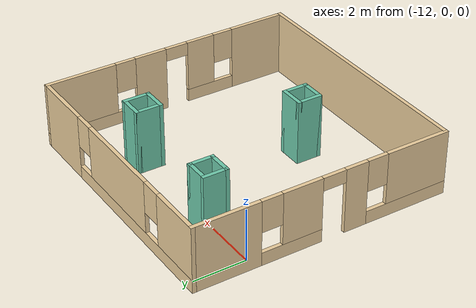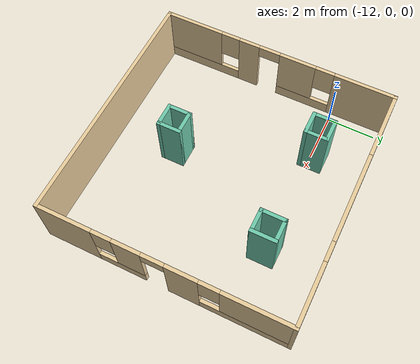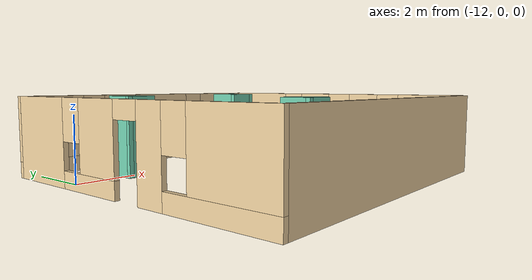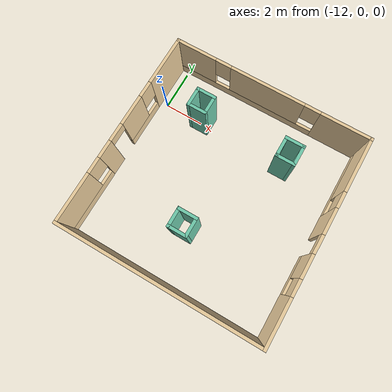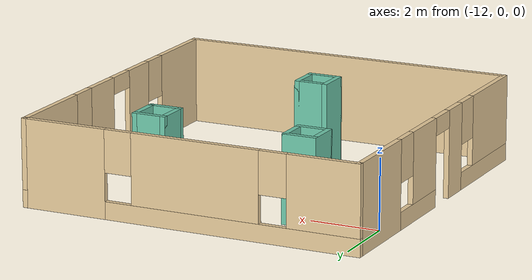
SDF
<?xml version='1.0'?>
<sdf version='1.7'>
  <model name='building_with_pillars'>
    <pose>-6.24379 -2.6968 0 0 -0 0</pose>
    <link name='Wall_0'>
      <pose>-6.16879 -0 0 0 -0 -1.5708</pose>
      <visual name='Wall_0_Visual_0'>
        <pose>-3.71684 0 1.25 0 -0 0</pose>
        <geometry>
          <box>
            <size>2.56633 0.15 2.5</size>
          </box>
        </geometry>
        <material>
          <script>
            <uri>file://media/materials/scripts/gazebo.material</uri>
            <name>Gazebo/Grey</name>
          </script>
          <ambient>0.921569 0.807843 0.615686 1</ambient>
        </material>
        <meta>
          <layer>0</layer>
        </meta>
      </visual>
      <collision name='Wall_0_Collision_0'>
        <geometry>
          <box>
            <size>2.56633 0.15 2.5</size>
          </box>
        </geometry>
        <pose>-3.71684 0 1.25 0 -0 0</pose>
      </collision>
      <visual name='Wall_0_Visual_1'>
        <pose>1.24118 0 1.25 0 -0 0</pose>
        <geometry>
          <box>
            <size>0.884796 0.15 2.5</size>
          </box>
        </geometry>
        <material>
          <script>
            <uri>file://media/materials/scripts/gazebo.material</uri>
            <name>Gazebo/Grey</name>
          </script>
          <ambient>0.921569 0.807843 0.615686 1</ambient>
        </material>
        <meta>
          <layer>0</layer>
        </meta>
      </visual>
      <collision name='Wall_0_Collision_1'>
        <geometry>
          <box>
            <size>0.884796 0.15 2.5</size>
          </box>
        </geometry>
        <pose>1.24118 0 1.25 0 -0 0</pose>
      </collision>
      <visual name='Wall_0_Visual_2'>
        <pose>-1.26745 0 0.25 0 -0 0</pose>
        <geometry>
          <box>
            <size>2.33245 0.15 0.5</size>
          </box>
        </geometry>
        <material>
          <script>
            <uri>file://media/materials/scripts/gazebo.material</uri>
            <name>Gazebo/Grey</name>
          </script>
          <ambient>0.921569 0.807843 0.615686 1</ambient>
        </material>
        <meta>
          <layer>0</layer>
        </meta>
      </visual>
      <collision name='Wall_0_Collision_2'>
        <geometry>
          <box>
            <size>2.33245 0.15 0.5</size>
          </box>
        </geometry>
        <pose>-1.26745 0 0.25 0 -0 0</pose>
      </collision>
      <visual name='Wall_0_Visual_3'>
        <pose>3.34179 0 0.25 0 -0 0</pose>
        <geometry>
          <box>
            <size>3.31643 0.15 0.5</size>
          </box>
        </geometry>
        <material>
          <script>
            <uri>file://media/materials/scripts/gazebo.material</uri>
            <name>Gazebo/Grey</name>
          </script>
          <ambient>0.921569 0.807843 0.615686 1</ambient>
        </material>
        <meta>
          <layer>0</layer>
        </meta>
      </visual>
      <collision name='Wall_0_Collision_3'>
        <geometry>
          <box>
            <size>3.31643 0.15 0.5</size>
          </box>
        </geometry>
        <pose>3.34179 0 0.25 0 -0 0</pose>
      </collision>
      <visual name='Wall_0_Visual_4'>
        <pose>-0.867448 0 1.5 0 -0 0</pose>
        <geometry>
          <box>
            <size>1.53245 0.15 2</size>
          </box>
        </geometry>
        <material>
          <script>
            <uri>file://media/materials/scripts/gazebo.material</uri>
            <name>Gazebo/Grey</name>
          </script>
          <ambient>0.921569 0.807843 0.615686 1</ambient>
        </material>
        <meta>
          <layer>0</layer>
        </meta>
      </visual>
      <collision name='Wall_0_Collision_4'>
        <geometry>
          <box>
            <size>1.53245 0.15 2</size>
          </box>
        </geometry>
        <pose>-0.867448 0 1.5 0 -0 0</pose>
      </collision>
      <visual name='Wall_0_Visual_5'>
        <pose>-0.867448 0 1.5 0 -0 0</pose>
        <geometry>
          <box>
            <size>1.53245 0.15 2</size>
          </box>
        </geometry>
        <material>
          <script>
            <uri>file://media/materials/scripts/gazebo.material</uri>
            <name>Gazebo/Grey</name>
          </script>
          <ambient>0.921569 0.807843 0.615686 1</ambient>
        </material>
        <meta>
          <layer>0</layer>
        </meta>
      </visual>
      <collision name='Wall_0_Collision_5'>
        <geometry>
          <box>
            <size>1.53245 0.15 2</size>
          </box>
        </geometry>
        <pose>-0.867448 0 1.5 0 -0 0</pose>
      </collision>
      <visual name='Wall_0_Visual_6'>
        <pose>3.74179 0 1.5 0 -0 0</pose>
        <geometry>
          <box>
            <size>2.51643 0.15 2</size>
          </box>
        </geometry>
        <material>
          <script>
            <uri>file://media/materials/scripts/gazebo.material</uri>
            <name>Gazebo/Grey</name>
          </script>
          <ambient>0.921569 0.807843 0.615686 1</ambient>
        </material>
        <meta>
          <layer>0</layer>
        </meta>
      </visual>
      <collision name='Wall_0_Collision_6'>
        <geometry>
          <box>
            <size>2.51643 0.15 2</size>
          </box>
        </geometry>
        <pose>3.74179 0 1.5 0 -0 0</pose>
      </collision>
      <visual name='Wall_0_Visual_7'>
        <pose>-2.03367 0 1.9 0 -0 0</pose>
        <geometry>
          <box>
            <size>0.8 0.15 1.2</size>
          </box>
        </geometry>
        <material>
          <script>
            <uri>file://media/materials/scripts/gazebo.material</uri>
            <name>Gazebo/Grey</name>
          </script>
          <ambient>0.921569 0.807843 0.615686 1</ambient>
        </material>
        <meta>
          <layer>0</layer>
        </meta>
      </visual>
      <collision name='Wall_0_Collision_7'>
        <geometry>
          <box>
            <size>0.8 0.15 1.2</size>
          </box>
        </geometry>
        <pose>-2.03367 0 1.9 0 -0 0</pose>
      </collision>
      <visual name='Wall_0_Visual_8'>
        <pose>2.08357 0 1.9 0 -0 0</pose>
        <geometry>
          <box>
            <size>0.8 0.15 1.2</size>
          </box>
        </geometry>
        <material>
          <script>
            <uri>file://media/materials/scripts/gazebo.material</uri>
            <name>Gazebo/Grey</name>
          </script>
          <ambient>0.921569 0.807843 0.615686 1</ambient>
        </material>
        <meta>
          <layer>0</layer>
        </meta>
      </visual>
      <collision name='Wall_0_Collision_8'>
        <geometry>
          <box>
            <size>0.8 0.15 1.2</size>
          </box>
        </geometry>
        <pose>2.08357 0 1.9 0 -0 0</pose>
      </collision>
      <visual name='Wall_0_Visual_9'>
        <pose>0.348778 0 2.25 0 -0 0</pose>
        <geometry>
          <box>
            <size>0.9 0.15 0.5</size>
          </box>
        </geometry>
        <material>
          <script>
            <uri>file://media/materials/scripts/gazebo.material</uri>
            <name>Gazebo/Grey</name>
          </script>
          <ambient>0.921569 0.807843 0.615686 1</ambient>
        </material>
        <meta>
          <layer>0</layer>
        </meta>
      </visual>
      <collision name='Wall_0_Collision_9'>
        <geometry>
          <box>
            <size>0.9 0.15 0.5</size>
          </box>
        </geometry>
        <pose>0.348778 0 2.25 0 -0 0</pose>
      </collision>
      <visual name='Wall_0_Visual_10'>
        <pose>0.348778 0 2.25 0 -0 0</pose>
        <geometry>
          <box>
            <size>0.9 0.15 0.5</size>
          </box>
        </geometry>
        <material>
          <script>
            <uri>file://media/materials/scripts/gazebo.material</uri>
            <name>Gazebo/Grey</name>
          </script>
          <ambient>0.921569 0.807843 0.615686 1</ambient>
        </material>
        <meta>
          <layer>0</layer>
        </meta>
      </visual>
      <collision name='Wall_0_Collision_10'>
        <geometry>
          <box>
            <size>0.9 0.15 0.5</size>
          </box>
        </geometry>
        <pose>0.348778 0 2.25 0 -0 0</pose>
      </collision>
    </link>
    <link name='Wall_1'>
      <collision name='Wall_1_Collision'>
        <geometry>
          <box>
            <size>10 0.15 2.5</size>
          </box>
        </geometry>
        <pose>0 0 1.25 0 -0 0</pose>
      </collision>
      <visual name='Wall_1_Visual'>
        <pose>0 0 1.25 0 -0 0</pose>
        <geometry>
          <box>
            <size>10 0.15 2.5</size>
          </box>
        </geometry>
        <material>
          <script>
            <uri>file://media/materials/scripts/gazebo.material</uri>
            <name>Gazebo/Grey</name>
          </script>
          <ambient>0.921569 0.807843 0.615686 1</ambient>
        </material>
        <meta>
          <layer>0</layer>
        </meta>
      </visual>
      <pose>-1.24378 -4.925 0 0 -0 0</pose>
    </link>
    <link name='Wall_11'>
      <collision name='Wall_11_Collision'>
        <geometry>
          <box>
            <size>1 0.15 2.5</size>
          </box>
        </geometry>
        <pose>0 0 1.25 0 -0 0</pose>
      </collision>
      <visual name='Wall_11_Visual'>
        <pose>0 0 1.25 0 -0 0</pose>
        <geometry>
          <box>
            <size>1 0.15 2.5</size>
          </box>
        </geometry>
        <material>
          <script>
            <uri>file://media/materials/scripts/gazebo.material</uri>
            <name>Gazebo/Grey</name>
          </script>
          <ambient>0.435294 0.796078 0.67451 1</ambient>
        </material>
        <meta>
          <layer>0</layer>
        </meta>
      </visual>
      <pose>-3.68479 3.24047 0 0 -0 0</pose>
    </link>
    <link name='Wall_12'>
      <collision name='Wall_12_Collision'>
        <geometry>
          <box>
            <size>1 0.15 2.5</size>
          </box>
        </geometry>
        <pose>0 0 1.25 0 -0 0</pose>
      </collision>
      <visual name='Wall_12_Visual'>
        <pose>0 0 1.25 0 -0 0</pose>
        <geometry>
          <box>
            <size>1 0.15 2.5</size>
          </box>
        </geometry>
        <material>
          <script>
            <uri>file://media/materials/scripts/gazebo.material</uri>
            <name>Gazebo/Grey</name>
          </script>
          <ambient>0.435294 0.796078 0.67451 1</ambient>
        </material>
        <meta>
          <layer>0</layer>
        </meta>
      </visual>
      <pose>-3.25979 2.81547 0 0 -0 -1.5708</pose>
    </link>
    <link name='Wall_13'>
      <collision name='Wall_13_Collision'>
        <geometry>
          <box>
            <size>1 0.15 2.5</size>
          </box>
        </geometry>
        <pose>0 0 1.25 0 -0 0</pose>
      </collision>
      <visual name='Wall_13_Visual'>
        <pose>0 0 1.25 0 -0 0</pose>
        <geometry>
          <box>
            <size>1 0.15 2.5</size>
          </box>
        </geometry>
        <material>
          <script>
            <uri>file://media/materials/scripts/gazebo.material</uri>
            <name>Gazebo/Grey</name>
          </script>
          <ambient>0.435294 0.796078 0.67451 1</ambient>
        </material>
        <meta>
          <layer>0</layer>
        </meta>
      </visual>
      <pose>-3.68479 2.39047 0 0 -0 3.14159</pose>
    </link>
    <link name='Wall_14'>
      <collision name='Wall_14_Collision'>
        <geometry>
          <box>
            <size>1 0.15 2.5</size>
          </box>
        </geometry>
        <pose>0 0 1.25 0 -0 0</pose>
      </collision>
      <visual name='Wall_14_Visual'>
        <pose>0 0 1.25 0 -0 0</pose>
        <geometry>
          <box>
            <size>1 0.15 2.5</size>
          </box>
        </geometry>
        <material>
          <script>
            <uri>file://media/materials/scripts/gazebo.material</uri>
            <name>Gazebo/Grey</name>
          </script>
          <ambient>0.435294 0.796078 0.67451 1</ambient>
        </material>
        <meta>
          <layer>0</layer>
        </meta>
      </visual>
      <pose>-4.10979 2.81547 0 0 -0 1.5708</pose>
    </link>
    <link name='Wall_16'>
      <collision name='Wall_16_Collision'>
        <geometry>
          <box>
            <size>1 0.15 2.5</size>
          </box>
        </geometry>
        <pose>0 0 1.25 0 -0 0</pose>
      </collision>
      <visual name='Wall_16_Visual'>
        <pose>0 0 1.25 0 -0 0</pose>
        <geometry>
          <box>
            <size>1 0.15 2.5</size>
          </box>
        </geometry>
        <material>
          <script>
            <uri>file://media/materials/scripts/gazebo.material</uri>
            <name>Gazebo/Grey</name>
          </script>
          <ambient>0.435294 0.796078 0.67451 1</ambient>
        </material>
        <meta>
          <layer>0</layer>
        </meta>
      </visual>
      <pose>-1.60652 -1.86388 0 0 -0 0</pose>
    </link>
    <link name='Wall_17'>
      <collision name='Wall_17_Collision'>
        <geometry>
          <box>
            <size>1 0.15 2.5</size>
          </box>
        </geometry>
        <pose>0 0 1.25 0 -0 0</pose>
      </collision>
      <visual name='Wall_17_Visual'>
        <pose>0 0 1.25 0 -0 0</pose>
        <geometry>
          <box>
            <size>1 0.15 2.5</size>
          </box>
        </geometry>
        <material>
          <script>
            <uri>file://media/materials/scripts/gazebo.material</uri>
            <name>Gazebo/Grey</name>
          </script>
          <ambient>0.435294 0.796078 0.67451 1</ambient>
        </material>
        <meta>
          <layer>0</layer>
        </meta>
      </visual>
      <pose>-1.18152 -2.28888 0 0 -0 -1.5708</pose>
    </link>
    <link name='Wall_18'>
      <collision name='Wall_18_Collision'>
        <geometry>
          <box>
            <size>1 0.15 2.5</size>
          </box>
        </geometry>
        <pose>0 0 1.25 0 -0 0</pose>
      </collision>
      <visual name='Wall_18_Visual'>
        <pose>0 0 1.25 0 -0 0</pose>
        <geometry>
          <box>
            <size>1 0.15 2.5</size>
          </box>
        </geometry>
        <material>
          <script>
            <uri>file://media/materials/scripts/gazebo.material</uri>
            <name>Gazebo/Grey</name>
          </script>
          <ambient>0.435294 0.796078 0.67451 1</ambient>
        </material>
        <meta>
          <layer>0</layer>
        </meta>
      </visual>
      <pose>-1.60652 -2.71388 0 0 -0 3.14159</pose>
    </link>
    <link name='Wall_19'>
      <collision name='Wall_19_Collision'>
        <geometry>
          <box>
            <size>1 0.15 2.5</size>
          </box>
        </geometry>
        <pose>0 0 1.25 0 -0 0</pose>
      </collision>
      <visual name='Wall_19_Visual'>
        <pose>0 0 1.25 0 -0 0</pose>
        <geometry>
          <box>
            <size>1 0.15 2.5</size>
          </box>
        </geometry>
        <material>
          <script>
            <uri>file://media/materials/scripts/gazebo.material</uri>
            <name>Gazebo/Grey</name>
          </script>
          <ambient>0.435294 0.796078 0.67451 1</ambient>
        </material>
        <meta>
          <layer>0</layer>
        </meta>
      </visual>
      <pose>-2.03152 -2.28888 0 0 -0 1.5708</pose>
    </link>
    <link name='Wall_2'>
      <pose>3.68121 -0 0 0 -0 1.5708</pose>
      <visual name='Wall_2_Visual_0'>
        <pose>-3.84587 0 1.25 0 -0 0</pose>
        <geometry>
          <box>
            <size>2.30825 0.15 2.5</size>
          </box>
        </geometry>
        <material>
          <script>
            <uri>file://media/materials/scripts/gazebo.material</uri>
            <name>Gazebo/Grey</name>
          </script>
          <ambient>0.921569 0.807843 0.615686 1</ambient>
        </material>
        <meta>
          <layer>0</layer>
        </meta>
      </visual>
      <collision name='Wall_2_Collision_0'>
        <geometry>
          <box>
            <size>2.30825 0.15 2.5</size>
          </box>
        </geometry>
        <pose>-3.84587 0 1.25 0 -0 0</pose>
      </collision>
      <visual name='Wall_2_Visual_1'>
        <pose>0.786491 0 1.25 0 -0 0</pose>
        <geometry>
          <box>
            <size>1.27802 0.15 2.5</size>
          </box>
        </geometry>
        <material>
          <script>
            <uri>file://media/materials/scripts/gazebo.material</uri>
            <name>Gazebo/Grey</name>
          </script>
          <ambient>0.921569 0.807843 0.615686 1</ambient>
        </material>
        <meta>
          <layer>0</layer>
        </meta>
      </visual>
      <collision name='Wall_2_Collision_1'>
        <geometry>
          <box>
            <size>1.27802 0.15 2.5</size>
          </box>
        </geometry>
        <pose>0.786491 0 1.25 0 -0 0</pose>
      </collision>
      <visual name='Wall_2_Visual_2'>
        <pose>-1.72213 0 0.25 0 -0 0</pose>
        <geometry>
          <box>
            <size>1.93923 0.15 0.5</size>
          </box>
        </geometry>
        <material>
          <script>
            <uri>file://media/materials/scripts/gazebo.material</uri>
            <name>Gazebo/Grey</name>
          </script>
          <ambient>0.921569 0.807843 0.615686 1</ambient>
        </material>
        <meta>
          <layer>0</layer>
        </meta>
      </visual>
      <collision name='Wall_2_Collision_2'>
        <geometry>
          <box>
            <size>1.93923 0.15 0.5</size>
          </box>
        </geometry>
        <pose>-1.72213 0 0.25 0 -0 0</pose>
      </collision>
      <visual name='Wall_2_Visual_3'>
        <pose>3.21275 0 0.25 0 -0 0</pose>
        <geometry>
          <box>
            <size>3.5745 0.15 0.5</size>
          </box>
        </geometry>
        <material>
          <script>
            <uri>file://media/materials/scripts/gazebo.material</uri>
            <name>Gazebo/Grey</name>
          </script>
          <ambient>0.921569 0.807843 0.615686 1</ambient>
        </material>
        <meta>
          <layer>0</layer>
        </meta>
      </visual>
      <collision name='Wall_2_Collision_3'>
        <geometry>
          <box>
            <size>3.5745 0.15 0.5</size>
          </box>
        </geometry>
        <pose>3.21275 0 0.25 0 -0 0</pose>
      </collision>
      <visual name='Wall_2_Visual_4'>
        <pose>-1.32213 0 1.5 0 -0 0</pose>
        <geometry>
          <box>
            <size>1.13923 0.15 2</size>
          </box>
        </geometry>
        <material>
          <script>
            <uri>file://media/materials/scripts/gazebo.material</uri>
            <name>Gazebo/Grey</name>
          </script>
          <ambient>0.921569 0.807843 0.615686 1</ambient>
        </material>
        <meta>
          <layer>0</layer>
        </meta>
      </visual>
      <collision name='Wall_2_Collision_4'>
        <geometry>
          <box>
            <size>1.13923 0.15 2</size>
          </box>
        </geometry>
        <pose>-1.32213 0 1.5 0 -0 0</pose>
      </collision>
      <visual name='Wall_2_Visual_5'>
        <pose>-1.32213 0 1.5 0 -0 0</pose>
        <geometry>
          <box>
            <size>1.13923 0.15 2</size>
          </box>
        </geometry>
        <material>
          <script>
            <uri>file://media/materials/scripts/gazebo.material</uri>
            <name>Gazebo/Grey</name>
          </script>
          <ambient>0.921569 0.807843 0.615686 1</ambient>
        </material>
        <meta>
          <layer>0</layer>
        </meta>
      </visual>
      <collision name='Wall_2_Collision_5'>
        <geometry>
          <box>
            <size>1.13923 0.15 2</size>
          </box>
        </geometry>
        <pose>-1.32213 0 1.5 0 -0 0</pose>
      </collision>
      <visual name='Wall_2_Visual_6'>
        <pose>3.61275 0 1.5 0 -0 0</pose>
        <geometry>
          <box>
            <size>2.7745 0.15 2</size>
          </box>
        </geometry>
        <material>
          <script>
            <uri>file://media/materials/scripts/gazebo.material</uri>
            <name>Gazebo/Grey</name>
          </script>
          <ambient>0.921569 0.807843 0.615686 1</ambient>
        </material>
        <meta>
          <layer>0</layer>
        </meta>
      </visual>
      <collision name='Wall_2_Collision_6'>
        <geometry>
          <box>
            <size>2.7745 0.15 2</size>
          </box>
        </geometry>
        <pose>3.61275 0 1.5 0 -0 0</pose>
      </collision>
      <visual name='Wall_2_Visual_7'>
        <pose>-2.29175 0 1.9 0 -0 0</pose>
        <geometry>
          <box>
            <size>0.8 0.15 1.2</size>
          </box>
        </geometry>
        <material>
          <script>
            <uri>file://media/materials/scripts/gazebo.material</uri>
            <name>Gazebo/Grey</name>
          </script>
          <ambient>0.921569 0.807843 0.615686 1</ambient>
        </material>
        <meta>
          <layer>0</layer>
        </meta>
      </visual>
      <collision name='Wall_2_Collision_7'>
        <geometry>
          <box>
            <size>0.8 0.15 1.2</size>
          </box>
        </geometry>
        <pose>-2.29175 0 1.9 0 -0 0</pose>
      </collision>
      <visual name='Wall_2_Visual_8'>
        <pose>1.8255 0 1.9 0 -0 0</pose>
        <geometry>
          <box>
            <size>0.8 0.15 1.2</size>
          </box>
        </geometry>
        <material>
          <script>
            <uri>file://media/materials/scripts/gazebo.material</uri>
            <name>Gazebo/Grey</name>
          </script>
          <ambient>0.921569 0.807843 0.615686 1</ambient>
        </material>
        <meta>
          <layer>0</layer>
        </meta>
      </visual>
      <collision name='Wall_2_Collision_8'>
        <geometry>
          <box>
            <size>0.8 0.15 1.2</size>
          </box>
        </geometry>
        <pose>1.8255 0 1.9 0 -0 0</pose>
      </collision>
      <visual name='Wall_2_Visual_9'>
        <pose>-0.302517 0 2.25 0 -0 0</pose>
        <geometry>
          <box>
            <size>0.9 0.15 0.5</size>
          </box>
        </geometry>
        <material>
          <script>
            <uri>file://media/materials/scripts/gazebo.material</uri>
            <name>Gazebo/Grey</name>
          </script>
          <ambient>0.921569 0.807843 0.615686 1</ambient>
        </material>
        <meta>
          <layer>0</layer>
        </meta>
      </visual>
      <collision name='Wall_2_Collision_9'>
        <geometry>
          <box>
            <size>0.9 0.15 0.5</size>
          </box>
        </geometry>
        <pose>-0.302517 0 2.25 0 -0 0</pose>
      </collision>
      <visual name='Wall_2_Visual_10'>
        <pose>-0.302517 0 2.25 0 -0 0</pose>
        <geometry>
          <box>
            <size>0.9 0.15 0.5</size>
          </box>
        </geometry>
        <material>
          <script>
            <uri>file://media/materials/scripts/gazebo.material</uri>
            <name>Gazebo/Grey</name>
          </script>
          <ambient>0.921569 0.807843 0.615686 1</ambient>
        </material>
        <meta>
          <layer>0</layer>
        </meta>
      </visual>
      <collision name='Wall_2_Collision_10'>
        <geometry>
          <box>
            <size>0.9 0.15 0.5</size>
          </box>
        </geometry>
        <pose>-0.302517 0 2.25 0 -0 0</pose>
      </collision>
    </link>
    <link name='Wall_3'>
      <pose>-1.24378 4.925 0 0 -0 3.14159</pose>
      <visual name='Wall_3_Visual_0'>
        <pose>-3.73022 0 1.25 0 -0 0</pose>
        <geometry>
          <box>
            <size>2.53956 0.15 2.5</size>
          </box>
        </geometry>
        <material>
          <script>
            <uri>file://media/materials/scripts/gazebo.material</uri>
            <name>Gazebo/Grey</name>
          </script>
          <ambient>0.921569 0.807843 0.615686 1</ambient>
        </material>
        <meta>
          <layer>0</layer>
        </meta>
      </visual>
      <collision name='Wall_3_Collision_0'>
        <geometry>
          <box>
            <size>2.53956 0.15 2.5</size>
          </box>
        </geometry>
        <pose>-3.73022 0 1.25 0 -0 0</pose>
      </collision>
      <visual name='Wall_3_Visual_1'>
        <pose>1.26978 0 0.25 0 -0 0</pose>
        <geometry>
          <box>
            <size>7.46044 0.15 0.5</size>
          </box>
        </geometry>
        <material>
          <script>
            <uri>file://media/materials/scripts/gazebo.material</uri>
            <name>Gazebo/Grey</name>
          </script>
          <ambient>0.921569 0.807843 0.615686 1</ambient>
        </material>
        <meta>
          <layer>0</layer>
        </meta>
      </visual>
      <collision name='Wall_3_Collision_1'>
        <geometry>
          <box>
            <size>7.46044 0.15 0.5</size>
          </box>
        </geometry>
        <pose>1.26978 0 0.25 0 -0 0</pose>
      </collision>
      <visual name='Wall_3_Visual_2'>
        <pose>0.217921 0 1.5 0 -0 0</pose>
        <geometry>
          <box>
            <size>3.75673 0.15 2</size>
          </box>
        </geometry>
        <material>
          <script>
            <uri>file://media/materials/scripts/gazebo.material</uri>
            <name>Gazebo/Grey</name>
          </script>
          <ambient>0.921569 0.807843 0.615686 1</ambient>
        </material>
        <meta>
          <layer>0</layer>
        </meta>
      </visual>
      <collision name='Wall_3_Collision_2'>
        <geometry>
          <box>
            <size>3.75673 0.15 2</size>
          </box>
        </geometry>
        <pose>0.217921 0 1.5 0 -0 0</pose>
      </collision>
      <visual name='Wall_3_Visual_3'>
        <pose>3.94814 0 1.5 0 -0 0</pose>
        <geometry>
          <box>
            <size>2.10371 0.15 2</size>
          </box>
        </geometry>
        <material>
          <script>
            <uri>file://media/materials/scripts/gazebo.material</uri>
            <name>Gazebo/Grey</name>
          </script>
          <ambient>0.921569 0.807843 0.615686 1</ambient>
        </material>
        <meta>
          <layer>0</layer>
        </meta>
      </visual>
      <collision name='Wall_3_Collision_3'>
        <geometry>
          <box>
            <size>2.10371 0.15 2</size>
          </box>
        </geometry>
        <pose>3.94814 0 1.5 0 -0 0</pose>
      </collision>
      <visual name='Wall_3_Visual_4'>
        <pose>-2.06044 0 1.9 0 -0 0</pose>
        <geometry>
          <box>
            <size>0.8 0.15 1.2</size>
          </box>
        </geometry>
        <material>
          <script>
            <uri>file://media/materials/scripts/gazebo.material</uri>
            <name>Gazebo/Grey</name>
          </script>
          <ambient>0.921569 0.807843 0.615686 1</ambient>
        </material>
        <meta>
          <layer>0</layer>
        </meta>
      </visual>
      <collision name='Wall_3_Collision_4'>
        <geometry>
          <box>
            <size>0.8 0.15 1.2</size>
          </box>
        </geometry>
        <pose>-2.06044 0 1.9 0 -0 0</pose>
      </collision>
      <visual name='Wall_3_Visual_5'>
        <pose>2.49629 0 1.9 0 -0 0</pose>
        <geometry>
          <box>
            <size>0.8 0.15 1.2</size>
          </box>
        </geometry>
        <material>
          <script>
            <uri>file://media/materials/scripts/gazebo.material</uri>
            <name>Gazebo/Grey</name>
          </script>
          <ambient>0.921569 0.807843 0.615686 1</ambient>
        </material>
        <meta>
          <layer>0</layer>
        </meta>
      </visual>
      <collision name='Wall_3_Collision_5'>
        <geometry>
          <box>
            <size>0.8 0.15 1.2</size>
          </box>
        </geometry>
        <pose>2.49629 0 1.9 0 -0 0</pose>
      </collision>
    </link>
    <link name='Wall_6'>
      <collision name='Wall_6_Collision'>
        <geometry>
          <box>
            <size>1 0.15 2.5</size>
          </box>
        </geometry>
        <pose>0 0 1.25 0 -0 0</pose>
      </collision>
      <visual name='Wall_6_Visual'>
        <pose>0 0 1.25 0 -0 0</pose>
        <geometry>
          <box>
            <size>1 0.15 2.5</size>
          </box>
        </geometry>
        <material>
          <script>
            <uri>file://media/materials/scripts/gazebo.material</uri>
            <name>Gazebo/Grey</name>
          </script>
          <ambient>0.435294 0.796078 0.67451 1</ambient>
        </material>
        <meta>
          <layer>0</layer>
        </meta>
      </visual>
      <pose>0.845649 3.14699 0 0 -0 0</pose>
    </link>
    <link name='Wall_7'>
      <collision name='Wall_7_Collision'>
        <geometry>
          <box>
            <size>1.06957 0.15 2.5</size>
          </box>
        </geometry>
        <pose>0 0 1.25 0 -0 0</pose>
      </collision>
      <visual name='Wall_7_Visual'>
        <pose>0 0 1.25 0 -0 0</pose>
        <geometry>
          <box>
            <size>1.06957 0.15 2.5</size>
          </box>
        </geometry>
        <material>
          <script>
            <uri>file://media/materials/scripts/gazebo.material</uri>
            <name>Gazebo/Grey</name>
          </script>
          <ambient>0.435294 0.796078 0.67451 1</ambient>
        </material>
        <meta>
          <layer>0</layer>
        </meta>
      </visual>
      <pose>1.27065 2.68721 0 0 -0 -1.5708</pose>
    </link>
    <link name='Wall_8'>
      <collision name='Wall_8_Collision'>
        <geometry>
          <box>
            <size>1 0.15 2.5</size>
          </box>
        </geometry>
        <pose>0 0 1.25 0 -0 0</pose>
      </collision>
      <visual name='Wall_8_Visual'>
        <pose>0 0 1.25 0 -0 0</pose>
        <geometry>
          <box>
            <size>1 0.15 2.5</size>
          </box>
        </geometry>
        <material>
          <script>
            <uri>file://media/materials/scripts/gazebo.material</uri>
            <name>Gazebo/Grey</name>
          </script>
          <ambient>0.435294 0.796078 0.67451 1</ambient>
        </material>
        <meta>
          <layer>0</layer>
        </meta>
      </visual>
      <pose>0.845649 2.22743 0 0 -0 3.14159</pose>
    </link>
    <link name='Wall_9'>
      <collision name='Wall_9_Collision'>
        <geometry>
          <box>
            <size>1.05217 0.15 2.5</size>
          </box>
        </geometry>
        <pose>0 0 1.25 0 -0 0</pose>
      </collision>
      <visual name='Wall_9_Visual'>
        <pose>0 0 1.25 0 -0 0</pose>
        <geometry>
          <box>
            <size>1.05217 0.15 2.5</size>
          </box>
        </geometry>
        <material>
          <script>
            <uri>file://media/materials/scripts/gazebo.material</uri>
            <name>Gazebo/Grey</name>
          </script>
          <ambient>0.435294 0.796078 0.67451 1</ambient>
        </material>
        <meta>
          <layer>0</layer>
        </meta>
      </visual>
      <pose>0.420649 2.69591 0 0 -0 1.5708</pose>
    </link>
    <static>1</static>
  </model>
</sdf>
